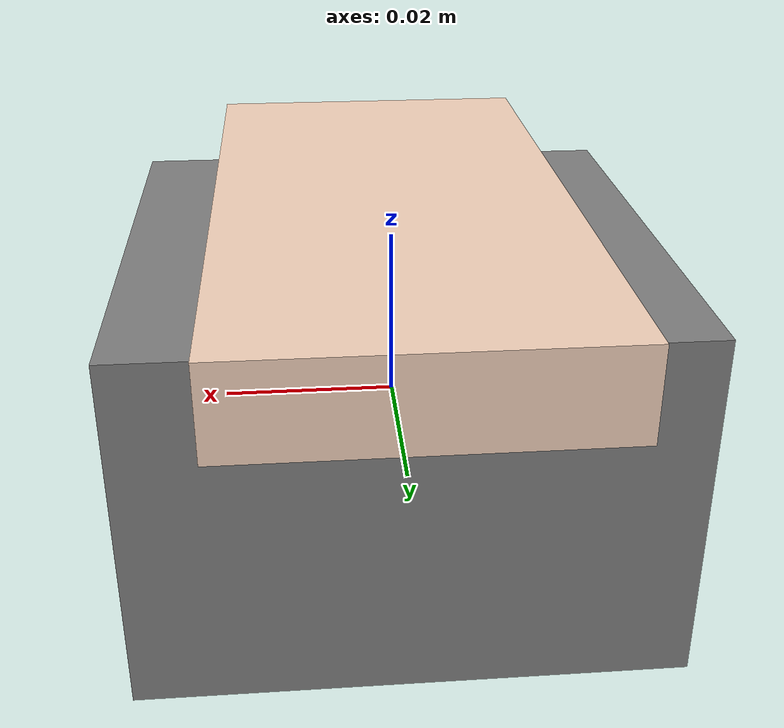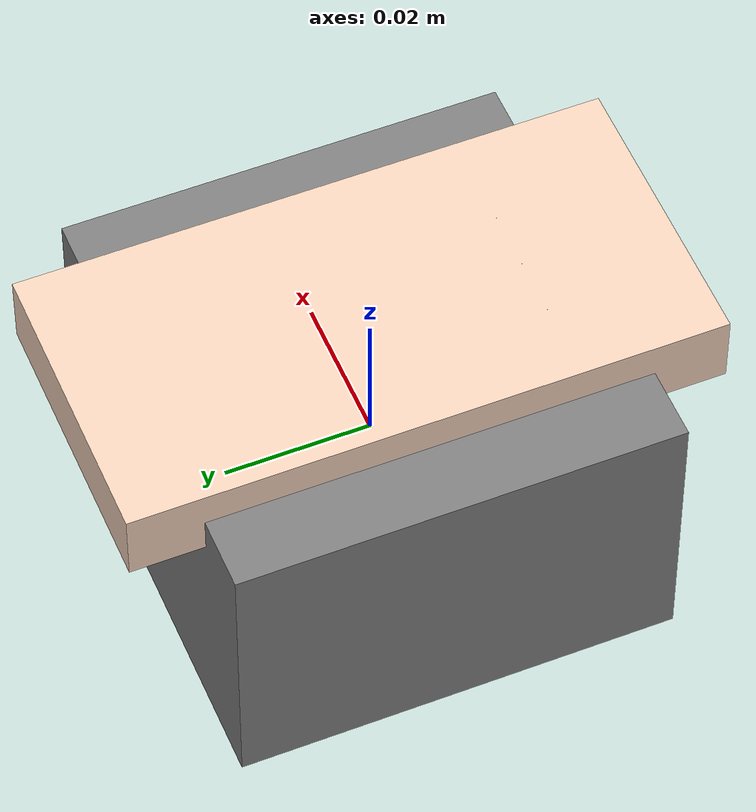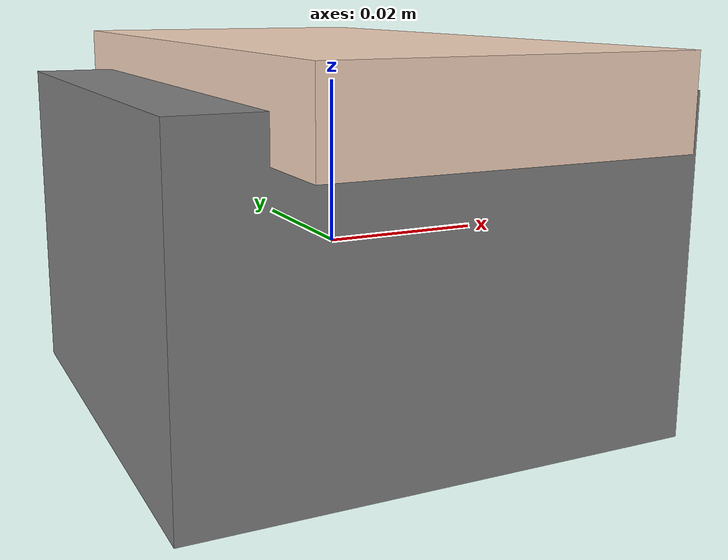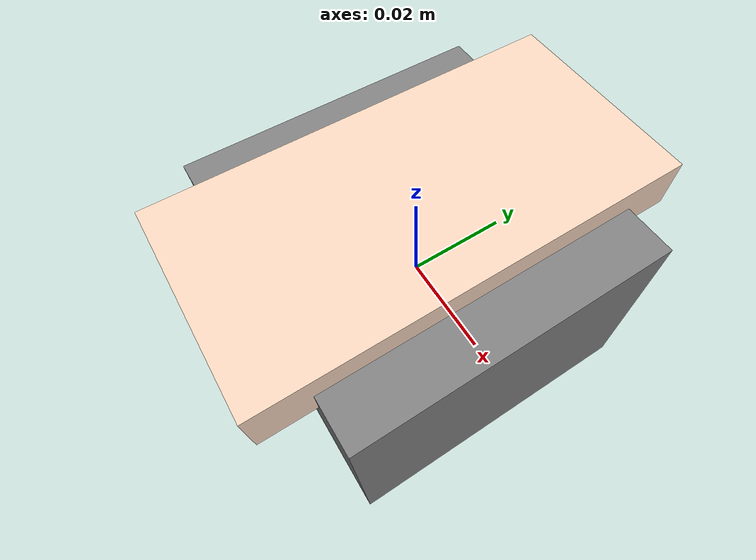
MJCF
<?xml version="1.0" ?>
<mujoco model="hannes">
  <compiler angle="radian"/>

  <option>
    <flag contact="enable"/>
  </option>

  <equality>
    <!-- 所有手指关节耦合到食指关节 -->
    <joint joint1="forefinger_joint" joint2="midfinger_joint" polycoef="0 1 0 0 0"/>
    <joint joint1="forefinger_joint" joint2="ringfinger_joint" polycoef="0 1 0 0 0"/>
    <joint joint1="forefinger_joint" joint2="littlefinger_joint" polycoef="0 1 0 0 0"/>
  </equality>

  <asset>
    <material name="skin" rgba="0.96 0.83 0.74 1"/>
    <material name="red" rgba="1 0 0 1"/>
  </asset>

  <actuator>
    <motor name="wrist_pitch_motor" joint="wrist_pitch" ctrllimited="true" ctrlrange="-5.0 5.0"/>
    <motor name="wrist_yaw_motor" joint="wrist_yaw" ctrllimited="true" ctrlrange="-5.0 5.0"/>
    <!-- 4个手指的 actuator（虽然通过 equality 约束同步，但 robosuite 需要完整的 actuator 定义） -->
    <motor name="forefinger_motor" joint="forefinger_joint" ctrllimited="true" ctrlrange="0.0 2.0"/>
    <motor name="midfinger_motor" joint="midfinger_joint" ctrllimited="true" ctrlrange="0.0 2.0"/>
    <motor name="ringfinger_motor" joint="ringfinger_joint" ctrllimited="true" ctrlrange="0.0 2.0"/>
    <motor name="littlefinger_motor" joint="littlefinger_joint" ctrllimited="true" ctrlrange="0.0 2.0"/>
  </actuator>

  <worldbody>
    <!-- Hannes 手部（只包含机器人本体） -->
    <body name="base" pos="0 0 0">
      <site name="right_center" pos="0 0 0" size="0.01" rgba="1 0.3 0.3 1" group="2"/>
      <inertial pos="0 0 0" mass="0.1" diaginertia="0.01 0.01 0.01"/>
      <geom type="box" size="0.03 0.03 0.02" rgba="0.5 0.5 0.5 1" contype="0" conaffinity="0"/>

      <!-- Wrist pitch -->
      <body name="wrist_pitch_link" pos="0 0 0.02">
        <inertial pos="0 0 0" mass="0.05" diaginertia="0.0005 0.0005 0.0005"/>
        <joint name="wrist_pitch" type="hinge" pos="0 0 0" axis="1 0 0"
               limited="true" range="-0.5236 0.5236" damping="0.1"/>

        <!-- Wrist yaw -->
        <body name="wrist_yaw_link" pos="0 0 0">
          <inertial pos="0 0 0" mass="0.05" diaginertia="0.0005 0.0005 0.0005"/>
          <joint name="wrist_yaw" type="hinge" pos="0 0 0" axis="0 1 0"
                 limited="true" range="-1.0472 1.0472" damping="0.1"/>

          <!-- Palm -->
          <body name="palm" pos="0 0 0">
            <inertial pos="0 -0.003 0.001" mass="0.2" diaginertia="0.002 0.002 0.001"/>
            <geom type="box" size="0.02 0.04 0.005" material="skin" contype="1" conaffinity="2"/>

            <!-- Forefinger -->
            <body name="forefinger_link" pos="0.001 -0.005 0.001">
              <inertial pos="0 -0.0015 0" mass="0.02" diaginertia="0.0001 0.0001 0.0001"/>
              <joint name="forefinger_joint" type="hinge" pos="0 0 0" axis="1 0 0"
                     limited="true" range="0.0 1.57" damping="0.05"/>
              <geom type="capsule" size="0.004 0.015" material="skin"
                    contype="1" conaffinity="2" pos="0 -0.015 0" quat="0.707 0 0.707 0"/>
            </body>

            <!-- Midfinger -->
            <body name="midfinger_link" pos="0 -0.006 0.001">
              <inertial pos="0 -0.0016 0" mass="0.025" diaginertia="0.00015 0.00015 0.00005"/>
              <joint name="midfinger_joint" type="hinge" pos="0 0 0" axis="1 0 0"
                     limited="true" range="0.0 1.57" damping="0.05"/>
              <geom type="capsule" size="0.004 0.016" material="skin"
                    contype="1" conaffinity="2" pos="0 -0.016 0" quat="0.707 0 0.707 0"/>
            </body>

            <!-- Ringfinger -->
            <body name="ringfinger_link" pos="-0.001 -0.005 0.001">
              <inertial pos="0 -0.0015 0" mass="0.022" diaginertia="0.00012 0.00012 0.00005"/>
              <joint name="ringfinger_joint" type="hinge" pos="0 0 0" axis="1 0 0"
                     limited="true" range="0.0 1.57" damping="0.05"/>
              <geom type="capsule" size="0.004 0.015" material="skin"
                    contype="1" conaffinity="2" pos="0 -0.015 0" quat="0.707 0 0.707 0"/>
            </body>

            <!-- Littlefinger -->
            <body name="littlefinger_link" pos="-0.002 -0.005 0.001">
              <inertial pos="0 -0.00125 0" mass="0.018" diaginertia="0.0001 0.0001 0.00004"/>
              <joint name="littlefinger_joint" type="hinge" pos="0 0 0" axis="1 0 0"
                     limited="true" range="0.0 1.57" damping="0.05"/>
              <geom type="capsule" size="0.003 0.0125" material="skin"
                    contype="1" conaffinity="2" pos="0 -0.0125 0" quat="0.707 0 0.707 0"/>
            </body>

            <!-- Right hand site for robosuite -->
            <body name="right_hand" pos="0 -0.04 0" quat="1 0 0 0">
              <inertial pos="0 0 0" mass="0.001" diaginertia="0.0001 0.0001 0.0001"/>
            </body>

          </body>
        </body>
      </body>
    </body>
  </worldbody>
</mujoco>
